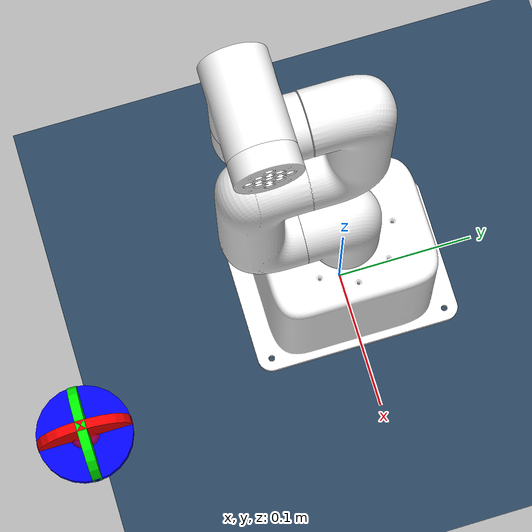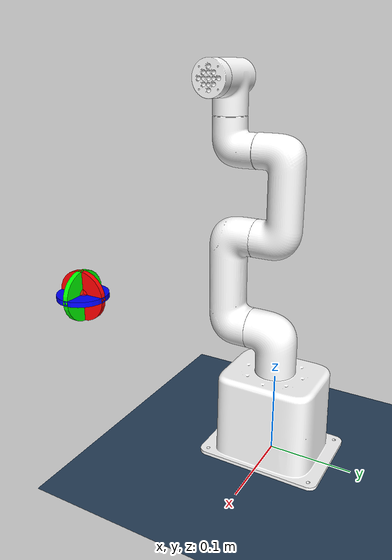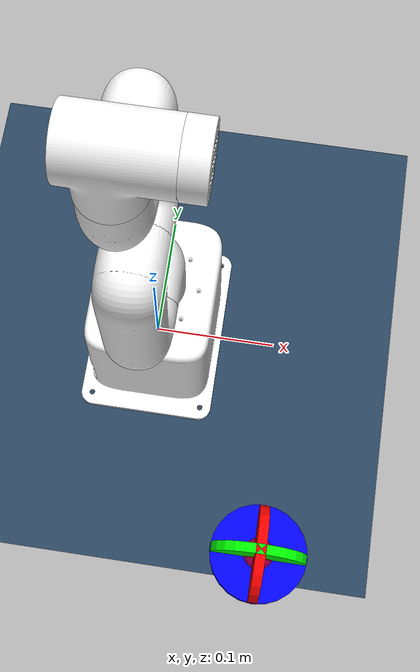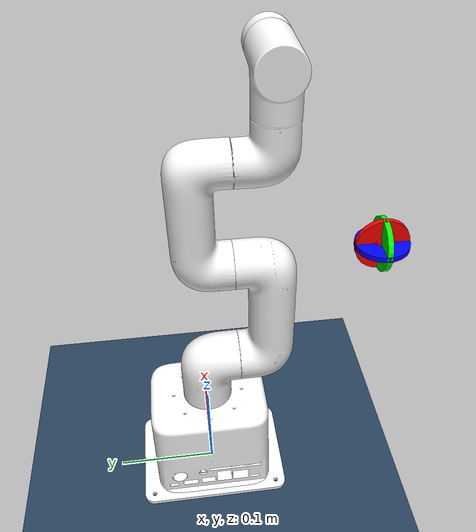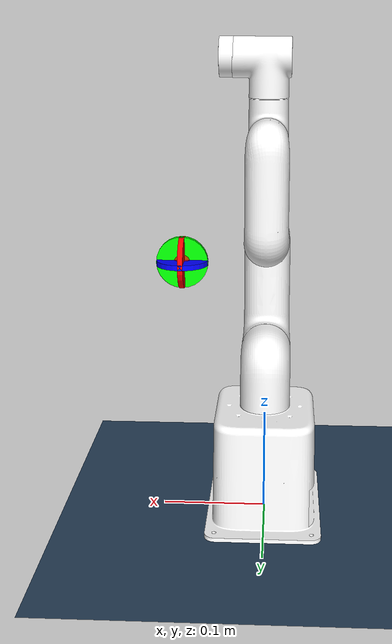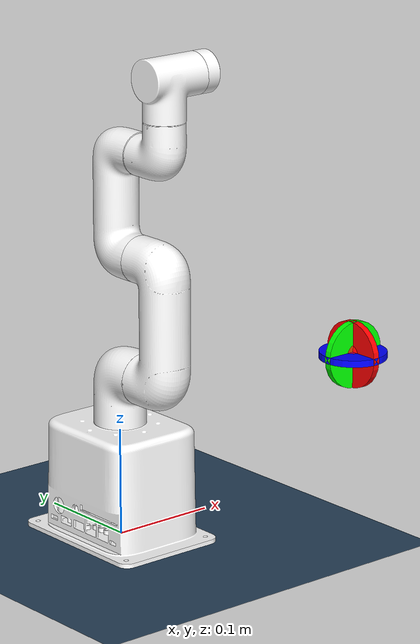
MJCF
<?xml version="1.0" encoding="UTF-8"?>
<mujoco model="firefighter">
    <compiler angle="radian" meshdir="../meshes_mujoco/" />
    <size njmax="500" nconmax="100" />
    <asset>
        <!-- 白色のマテリアルに変更 -->
        <material name="robot_material" rgba="1 1 1 1"/> <!-- White robot -->
        <material name="target_material" rgba="1 0 0 0.7"/> <!-- Red semi-transparent target -->
        <material name="x_axis_material" rgba="1 0 0 1"/> <!-- Red X axis -->
        <material name="y_axis_material" rgba="0 1 0 1"/> <!-- Green Y axis -->
        <material name="z_axis_material" rgba="0 0 1 1"/> <!-- Blue Z axis -->

        <texture name="grid" type="2d" builtin="checker" rgb1=".1 .2 .3"
        rgb2=".2 .3 .4" width="300" height="300"/>
        <material name="grid" texture="grid" texrepeat="8 8" reflectance=".2"/>

        <mesh name="joint1_jet" file="joint1_jet.stl" />
        <mesh name="joint2" file="joint2.stl" />
        <mesh name="joint3" file="joint3.stl" />
        <mesh name="joint4" file="joint4.stl" />
        <mesh name="joint5" file="joint5.stl" />
        <mesh name="joint6" file="joint6.stl" />
        <mesh name="joint7" file="joint7.stl" />
    </asset>
    <worldbody>
        <geom size=".2 .2 .01" type="plane" material="grid"/>
        <light pos="0 0 .6"/>
        <camera name="closeup" pos="0 -.1 .10" xyaxes="1 0 0 0 1 2"/>

        <!-- Target visualization - uncomment and modify for your target position -->
        <site name="target" pos="0.1 -0.2 0.2" size="0.01" type="sphere" material="target_material"/>
        <site name="target_x" pos="0.1 -0.2 0.2" size="0.03 0.003" type="cylinder" rgba="1 0 0 1" zaxis="1 0 0"/>
        <site name="target_y" pos="0.1 -0.2 0.2" size="0.03 0.003" type="cylinder" rgba="0 1 0 1" zaxis="0 1 0"/>
        <site name="target_z" pos="0.1 -0.2 0.2" size="0.03 0.003" type="cylinder" rgba="0 0 1 1" zaxis="0 0 1"/>

        <geom quat="0.000796327 0 0 1" type="mesh" contype="0" conaffinity="0" group="1" mesh="joint1_jet" material="robot_material" />
        <geom quat="0.000796327 0 0 1" type="mesh" mesh="joint1_jet" material="robot_material" />

        <body name="joint2" pos="0 0 0.15756">
            <inertial pos="-4.46252e-07 -0.0048982 -0.0203936" quat="0.988685 0.150004 1.75753e-05 -6.19332e-05" mass="0.153266" diaginertia="0.00010997 0.000104609 4.89092e-05" />
            <joint name="joint2_to_joint1" pos="0 0 0" axis="0 0 1" limited="true" range="-2.9321 2.9321" />
            <geom pos="0 0 -0.06096" quat="0.707105 0 0 -0.707108" type="mesh" contype="0" conaffinity="0" group="1" mesh="joint2" material="robot_material" />
            <geom pos="0 0 -0.06096" quat="0.707105 0 0 -0.707108" type="mesh" mesh="joint2" material="robot_material" />

            <body name="joint3" pos="0 0 -0.001" quat="0.499998 0.500002 0.5 -0.5">
                <inertial pos="-0.0548658 -3.79418e-06 0.0581352" quat="0.50338 0.49662 0.497294 0.502669" mass="0.4" diaginertia="0.000569683 0.000554829 8.82752e-05" />
                <joint name="joint3_to_joint2" pos="0 0 0" axis="0 0 1" limited="true" range="-2.0943 2.0943" />
                <geom pos="0 0 0.03256" quat="0.707105 0 -0.707108 0" type="mesh" contype="0" conaffinity="0" group="1" mesh="joint3" material="robot_material" />
                <geom pos="0 0 0.03256" quat="0.707105 0 -0.707108 0" type="mesh" mesh="joint3" material="robot_material" />

                <body name="joint4" pos="-0.1104 0 0">
                    <inertial pos="-0.0454441 4.51021e-07 0.00478273" quat="0.508392 0.491471 0.491339 0.508508" mass="0.219069" diaginertia="0.000359328 0.000340078 6.35956e-05" />
                    <joint name="joint4_to_joint3" pos="0 0 0" axis="0 0 1" limited="true" range="-2.6179 2.6179" />
                    <geom pos="0 0 0.03056" quat="0.707105 0 -0.707108 0" type="mesh" contype="0" conaffinity="0" group="1" mesh="joint4" material="robot_material" />
                    <geom pos="0 0 0.03056" quat="0.707105 0 -0.707108 0" type="mesh" mesh="joint4" material="robot_material" />

                    <body name="joint5" pos="-0.096 0 0.06462" quat="0.707105 0 0 -0.707108">
                        <inertial pos="1.49997e-05 -0.00761485 -0.00688111" quat="0.903244 0.429125 -0.00118023 0.00112811" mass="0.0576212" diaginertia="1.88765e-05 1.81573e-05 1.0565e-05" />
                        <joint name="joint5_to_joint4" pos="0 0 0" axis="0 0 1" limited="true" range="-2.5307 2.5307" />
                        <geom pos="0 0 -0.03356" quat="0.707105 -0.707108 0 0" type="mesh" contype="0" conaffinity="0" group="1" mesh="joint5" material="robot_material" />
                        <geom pos="0 0 -0.03356" quat="0.707105 -0.707108 0 0" type="mesh" mesh="joint5" material="robot_material" />

                        <body name="joint6" pos="0 -0.07318 0" quat="0.499998 0.5 -0.5 0.500002">
                            <inertial pos="-3.34552e-08 0.00487808 -0.00751659" quat="0.395895 0.918296 6.92557e-06 2.44425e-06" mass="0.0904837" diaginertia="4.06947e-05 3.23387e-05 2.57661e-05" />
                            <joint name="joint6_to_joint5" pos="0 0 0" axis="0 0 1" limited="true" range="-2.8797 2.8797" />
                            <geom pos="0 0 -0.038" type="mesh" contype="0" conaffinity="0" group="1" mesh="joint6" material="robot_material" />
                            <geom pos="0 0 -0.038" type="mesh" mesh="joint6" material="robot_material" />

                            <body name="joint6_flange" pos="0 0.0456 0" quat="0.707105 -0.707108 0 0">
                                <inertial pos="-6.68861e-07 -1.54403e-07 -0.00514555" quat="0.276336 0.650875 -0.27633 0.650877" mass="0.0121397" diaginertia="1.94827e-06 1.13494e-06 1.13491e-06" />
                                <joint name="joint7_to_joint6" pos="0 0 0" axis="0 0 1" limited="true" range="-3.14 3.14159" />
                                <geom pos="0 0 -0.012" type="mesh" contype="0" conaffinity="0" group="1" mesh="joint7" material="robot_material" />
                                <geom pos="0 0 -0.012" type="mesh" mesh="joint7" material="robot_material" />
                            </body>
                        </body>
                    </body>
                </body>
            </body>
        </body>
    </worldbody>
</mujoco>
